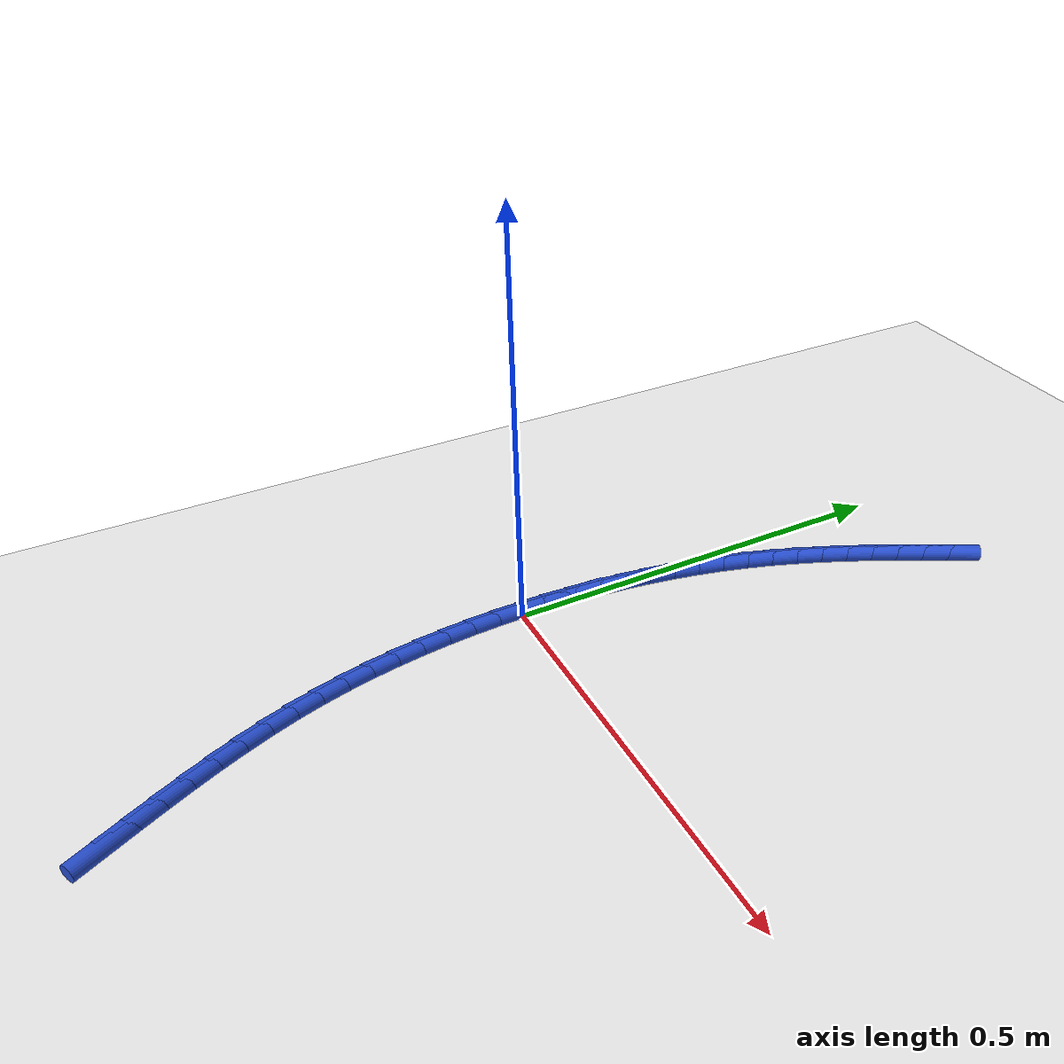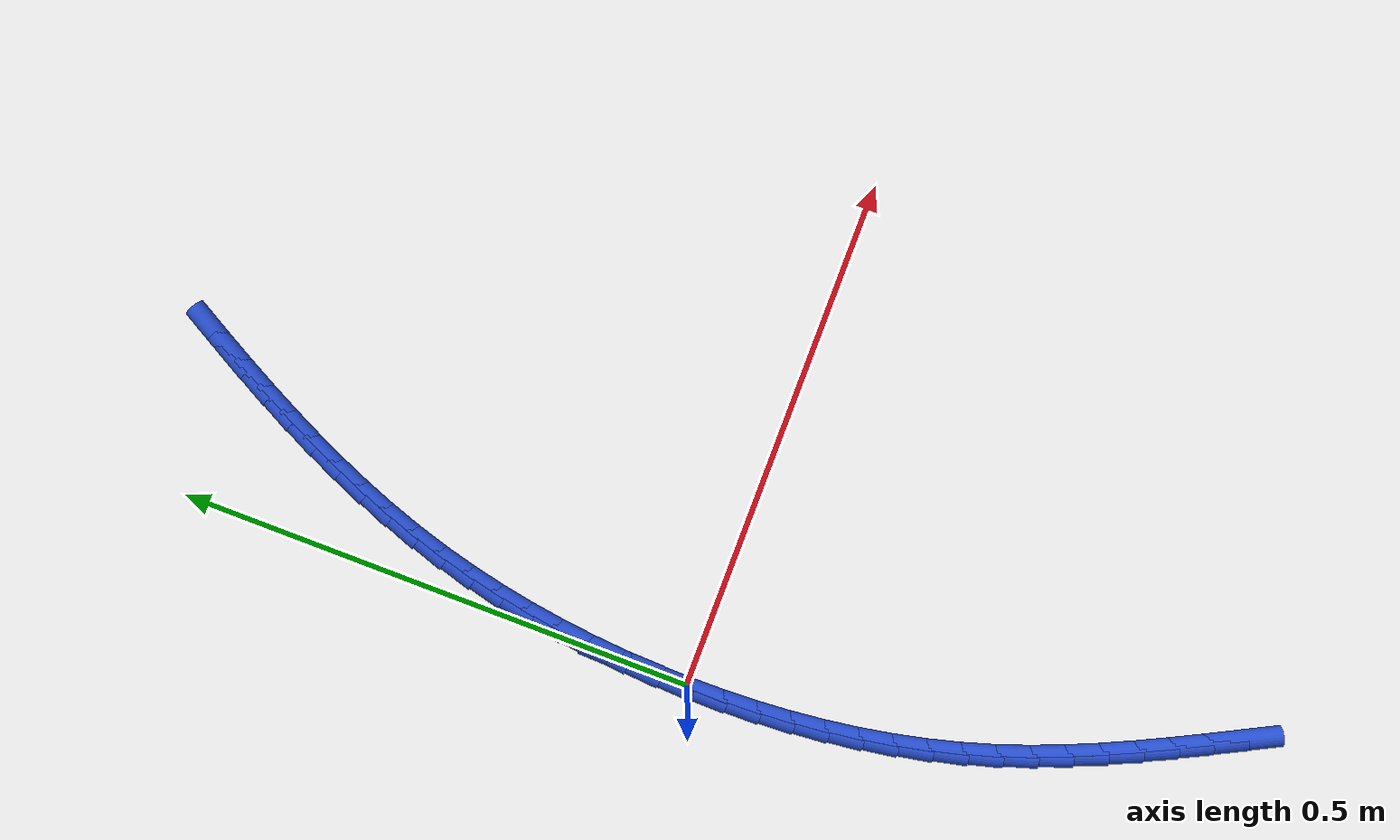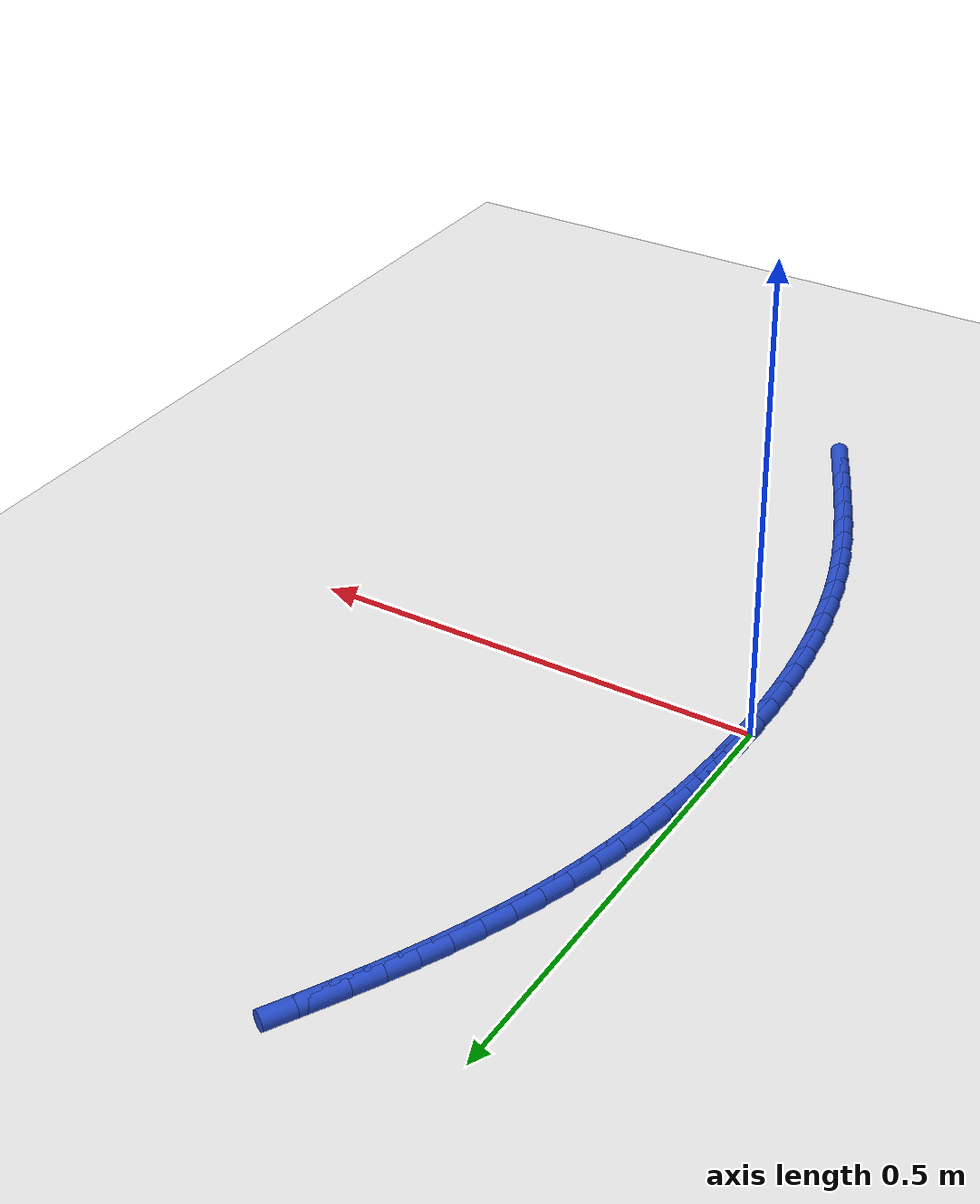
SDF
<sdf version="1.6">
 <world name="default">
  <model name="ground_plane">
   <static>1</static>
   <link name="link">
    <collision name="collision">
     <geometry><plane><normal>0 0 1</normal><size>100 100</size></plane></geometry>
     <surface><friction><ode><mu>100</mu><mu2>50</mu2></ode></friction></surface>
    </collision>
    <visual name="visual">
     <cast_shadows>0</cast_shadows>
     <geometry><plane><normal>0 0 1</normal><size>100 100</size></plane></geometry>
     <material>
      <script><uri>file://media/materials/scripts/gazebo.material</uri><name>Gazebo/WhiteGlow</name></script>
     </material>
    </visual>
   </link>
  </model>
  <model name="line">
   <link name="link_0">
    <pose>-1.1275702593849246e-17 6.938893903907228e-18 0.01 0 1.57 1.5528776744222816</pose>
    <collision name="collision">
     <geometry><cylinder><radius>0.01</radius><length>0.08</length></cylinder></geometry>
    </collision>
    <visual name="visual">
     <material>
      <script><name>Gazebo/Blue</name><uri>file://media/materials/scripts/gazebo.material</uri></script>
     </material>
     <geometry><cylinder><radius>0.01</radius><length>0.08</length></cylinder></geometry>
    </visual>
   </link>
   <link name="link_1">
    <pose>0.0005847356808313511 0.03262930076394987 0.01 0 1.57 1.5231234248671703</pose>
    <collision name="collision">
     <geometry><cylinder><radius>0.01</radius><length>0.08</length></cylinder></geometry>
    </collision>
    <visual name="visual">
     <material>
      <script><name>Gazebo/Blue</name><uri>file://media/materials/scripts/gazebo.material</uri></script>
     </material>
     <geometry><cylinder><radius>0.01</radius><length>0.08</length></cylinder></geometry>
    </visual>
   </link>
   <link name="link_2">
    <pose>0.0021392181864448552 0.06521185054207165 0.01 0 1.57 1.4924975641499387</pose>
    <collision name="collision">
     <geometry><cylinder><radius>0.01</radius><length>0.08</length></cylinder></geometry>
    </collision>
    <visual name="visual">
     <material>
      <script><name>Gazebo/Blue</name><uri>file://media/materials/scripts/gazebo.material</uri></script>
     </material>
     <geometry><cylinder><radius>0.01</radius><length>0.08</length></cylinder></geometry>
    </visual>
   </link>
   <link name="link_3">
    <pose>0.004687408967978583 0.09768977447747727 0.01 0 1.57 1.4608954747923455</pose>
    <collision name="collision">
     <geometry><cylinder><radius>0.01</radius><length>0.08</length></cylinder></geometry>
    </collision>
    <visual name="visual">
     <material>
      <script><name>Gazebo/Blue</name><uri>file://media/materials/scripts/gazebo.material</uri></script>
     </material>
     <geometry><cylinder><radius>0.01</radius><length>0.08</length></cylinder></geometry>
    </visual>
   </link>
   <link name="link_4">
    <pose>0.008253269476570608 0.1300051977132785 0.01 0 1.57 1.428212779567015</pose>
    <collision name="collision">
     <geometry><cylinder><radius>0.01</radius><length>0.08</length></cylinder></geometry>
    </collision>
    <visual name="visual">
     <material>
      <script><name>Gazebo/Blue</name><uri>file://media/materials/scripts/gazebo.material</uri></script>
     </material>
     <geometry><cylinder><radius>0.01</radius><length>0.08</length></cylinder></geometry>
    </visual>
   </link>
   <link name="link_5">
    <pose>0.012860761163359007 0.1621002453925873 0.01 0 1.57 1.3943459740241426</pose>
    <collision name="collision">
     <geometry><cylinder><radius>0.01</radius><length>0.08</length></cylinder></geometry>
    </collision>
    <visual name="visual">
     <material>
      <script><name>Gazebo/Blue</name><uri>file://media/materials/scripts/gazebo.material</uri></script>
     </material>
     <geometry><cylinder><radius>0.01</radius><length>0.08</length></cylinder></geometry>
    </visual>
   </link>
   <link name="link_6">
    <pose>0.01853384547948185 0.1939170426585154 0.01 0 1.57 1.359193421516529</pose>
    <collision name="collision">
     <geometry><cylinder><radius>0.01</radius><length>0.08</length></cylinder></geometry>
    </collision>
    <visual name="visual">
     <material>
      <script><name>Gazebo/Blue</name><uri>file://media/materials/scripts/gazebo.material</uri></script>
     </material>
     <geometry><cylinder><radius>0.01</radius><length>0.08</length></cylinder></geometry>
    </visual>
   </link>
   <link name="link_7">
    <pose>0.02529648387607722 0.22539771465417469 0.01 0 1.57 1.322656769166291</pose>
    <collision name="collision">
     <geometry><cylinder><radius>0.01</radius><length>0.08</length></cylinder></geometry>
    </collision>
    <visual name="visual">
     <material>
      <script><name>Gazebo/Blue</name><uri>file://media/materials/scripts/gazebo.material</uri></script>
     </material>
     <geometry><cylinder><radius>0.01</radius><length>0.08</length></cylinder></geometry>
    </visual>
   </link>
   <link name="link_8">
    <pose>0.03317263780428319 0.256484386522677 0.01 0 1.57 1.2846470649076709</pose>
    <collision name="collision">
     <geometry><cylinder><radius>0.01</radius><length>0.08</length></cylinder></geometry>
    </collision>
    <visual name="visual">
     <material>
      <script><name>Gazebo/Blue</name><uri>file://media/materials/scripts/gazebo.material</uri></script>
     </material>
     <geometry><cylinder><radius>0.01</radius><length>0.08</length></cylinder></geometry>
    </visual>
   </link>
   <link name="link_9">
    <pose>0.04218615847200757 0.2871192862710466 0.01 0 1.57 1.2463314492588073</pose>
    <collision name="collision">
     <geometry><cylinder><radius>0.01</radius><length>0.08</length></cylinder></geometry>
    </collision>
    <visual name="visual">
     <material>
      <script><name>Gazebo/Blue</name><uri>file://media/materials/scripts/gazebo.material</uri></script>
     </material>
     <geometry><cylinder><radius>0.01</radius><length>0.08</length></cylinder></geometry>
    </visual>
   </link>
   <link name="link_10">
    <pose>0.05232891794545917 0.3172744804698456 0.01 0 1.57 1.2107497144841182</pose>
    <collision name="collision">
     <geometry><cylinder><radius>0.01</radius><length>0.08</length></cylinder></geometry>
    </collision>
    <visual name="visual">
     <material>
      <script><name>Gazebo/Blue</name><uri>file://media/materials/scripts/gazebo.material</uri></script>
     </material>
     <geometry><cylinder><radius>0.01</radius><length>0.08</length></cylinder></geometry>
    </visual>
   </link>
   <link name="link_11">
    <pose>0.06351666048580978 0.3469930677507514 0.01 0 1.57 1.1784972051245906</pose>
    <collision name="collision">
     <geometry><cylinder><radius>0.01</radius><length>0.08</length></cylinder></geometry>
    </collision>
    <visual name="visual">
     <material>
      <script><name>Gazebo/Blue</name><uri>file://media/materials/scripts/gazebo.material</uri></script>
     </material>
     <geometry><cylinder><radius>0.01</radius><length>0.08</length></cylinder></geometry>
    </visual>
   </link>
   <link name="link_12">
    <pose>0.07565404607466868 0.37632848907992666 0.01 0 1.57 1.1496890651347498</pose>
    <collision name="collision">
     <geometry><cylinder><radius>0.01</radius><length>0.08</length></cylinder></geometry>
    </collision>
    <visual name="visual">
     <material>
      <script><name>Gazebo/Blue</name><uri>file://media/materials/scripts/gazebo.material</uri></script>
     </material>
     <geometry><cylinder><radius>0.01</radius><length>0.08</length></cylinder></geometry>
    </visual>
   </link>
   <link name="link_13">
    <pose>0.08864573469364508 0.405334185423534 0.01 0 1.57 1.1243934355770457</pose>
    <collision name="collision">
     <geometry><cylinder><radius>0.01</radius><length>0.08</length></cylinder></geometry>
    </collision>
    <visual name="visual">
     <material>
      <script><name>Gazebo/Blue</name><uri>file://media/materials/scripts/gazebo.material</uri></script>
     </material>
     <geometry><cylinder><radius>0.01</radius><length>0.08</length></cylinder></geometry>
    </visual>
   </link>
   <link name="link_14">
    <pose>0.10239638632434825 0.4340635977477362 0.01 0 1.57 1.1026409555502208</pose>
    <collision name="collision">
     <geometry><cylinder><radius>0.01</radius><length>0.08</length></cylinder></geometry>
    </collision>
    <visual name="visual">
     <material>
      <script><name>Gazebo/Blue</name><uri>file://media/materials/scripts/gazebo.material</uri></script>
     </material>
     <geometry><cylinder><radius>0.01</radius><length>0.08</length></cylinder></geometry>
    </visual>
   </link>
   <link name="link_15">
    <pose>0.11681066094838743 0.46257016701869563 0.01 0 1.57 1.0844339729226653</pose>
    <collision name="collision">
     <geometry><cylinder><radius>0.01</radius><length>0.08</length></cylinder></geometry>
    </collision>
    <visual name="visual">
     <material>
      <script><name>Gazebo/Blue</name><uri>file://media/materials/scripts/gazebo.material</uri></script>
     </material>
     <geometry><cylinder><radius>0.01</radius><length>0.08</length></cylinder></geometry>
    </visual>
   </link>
   <link name="link_16">
    <pose>0.13179321854737192 0.4909073342025754 0.01 0 1.57 1.0697548475673473</pose>
    <collision name="collision">
     <geometry><cylinder><radius>0.01</radius><length>0.08</length></cylinder></geometry>
    </collision>
    <visual name="visual">
     <material>
      <script><name>Gazebo/Blue</name><uri>file://media/materials/scripts/gazebo.material</uri></script>
     </material>
     <geometry><cylinder><radius>0.01</radius><length>0.08</length></cylinder></geometry>
    </visual>
   </link>
   <link name="link_17">
    <pose>0.14724871910291085 0.5191285402655377 0.01 0 1.57 1.0585729898277936</pose>
    <collision name="collision">
     <geometry><cylinder><radius>0.01</radius><length>0.08</length></cylinder></geometry>
    </collision>
    <visual name="visual">
     <material>
      <script><name>Gazebo/Blue</name><uri>file://media/materials/scripts/gazebo.material</uri></script>
     </material>
     <geometry><cylinder><radius>0.01</radius><length>0.08</length></cylinder></geometry>
    </visual>
   </link>
   <link name="link_204">
    <pose>0.13424867586608893 -0.49314504361906636 0.01 0 1.57 -1.0973495227596228</pose>
    <collision name="collision">
     <geometry><cylinder><radius>0.01</radius><length>0.08</length></cylinder></geometry>
    </collision>
    <visual name="visual">
     <material>
      <script><name>Gazebo/Blue</name><uri>file://media/materials/scripts/gazebo.material</uri></script>
     </material>
     <geometry><cylinder><radius>0.01</radius><length>0.08</length></cylinder></geometry>
    </visual>
   </link>
   <link name="link_205">
    <pose>0.11945685462642087 -0.4642722324491545 0.01 0 1.57 -1.106033818223249</pose>
    <collision name="collision">
     <geometry><cylinder><radius>0.01</radius><length>0.08</length></cylinder></geometry>
    </collision>
    <visual name="visual">
     <material>
      <script><name>Gazebo/Blue</name><uri>file://media/materials/scripts/gazebo.material</uri></script>
     </material>
     <geometry><cylinder><radius>0.01</radius><length>0.08</length></cylinder></geometry>
    </visual>
   </link>
   <link name="link_206">
    <pose>0.10493703220318351 -0.4353133482750056 0.01 0 1.57 -1.1201946108132743</pose>
    <collision name="collision">
     <geometry><cylinder><radius>0.01</radius><length>0.08</length></cylinder></geometry>
    </collision>
    <visual name="visual">
     <material>
      <script><name>Gazebo/Blue</name><uri>file://media/materials/scripts/gazebo.material</uri></script>
     </material>
     <geometry><cylinder><radius>0.01</radius><length>0.08</length></cylinder></geometry>
    </visual>
   </link>
   <link name="link_207">
    <pose>0.09085626119955191 -0.4062086633161604 0.01 0 1.57 -1.139883763650668</pose>
    <collision name="collision">
     <geometry><cylinder><radius>0.01</radius><length>0.08</length></cylinder></geometry>
    </collision>
    <visual name="visual">
     <material>
      <script><name>Gazebo/Blue</name><uri>file://media/materials/scripts/gazebo.material</uri></script>
     </material>
     <geometry><cylinder><radius>0.01</radius><length>0.08</length></cylinder></geometry>
    </visual>
   </link>
   <link name="link_208">
    <pose>0.07738159421870196 -0.3768984497921617 0.01 0 1.57 -1.1651532627304582</pose>
    <collision name="collision">
     <geometry><cylinder><radius>0.01</radius><length>0.08</length></cylinder></geometry>
    </collision>
    <visual name="visual">
     <material>
      <script><name>Gazebo/Blue</name><uri>file://media/materials/scripts/gazebo.material</uri></script>
     </material>
     <geometry><cylinder><radius>0.01</radius><length>0.08</length></cylinder></geometry>
    </visual>
   </link>
   <link name="link_209">
    <pose>0.06468008386380865 -0.34732297992255035 0.01 0 1.57 -1.1960370506722553</pose>
    <collision name="collision">
     <geometry><cylinder><radius>0.01</radius><length>0.08</length></cylinder></geometry>
    </collision>
    <visual name="visual">
     <material>
      <script><name>Gazebo/Blue</name><uri>file://media/materials/scripts/gazebo.material</uri></script>
     </material>
     <geometry><cylinder><radius>0.01</radius><length>0.08</length></cylinder></geometry>
    </visual>
   </link>
   <link name="link_210">
    <pose>0.052918782738047274 -0.3174225259268677 0.01 0 1.57 -1.232527132893923</pose>
    <collision name="collision">
     <geometry><cylinder><radius>0.01</radius><length>0.08</length></cylinder></geometry>
    </collision>
    <visual name="visual">
     <material>
      <script><name>Gazebo/Blue</name><uri>file://media/materials/scripts/gazebo.material</uri></script>
     </material>
     <geometry><cylinder><radius>0.01</radius><length>0.08</length></cylinder></geometry>
    </visual>
   </link>
   <link name="link_211">
    <pose>0.04226474344459309 -0.2871373600246553 0.01 0 1.57 -1.273877243915125</pose>
    <collision name="collision">
     <geometry><cylinder><radius>0.01</radius><length>0.08</length></cylinder></geometry>
    </collision>
    <visual name="visual">
     <material>
      <script><name>Gazebo/Blue</name><uri>file://media/materials/scripts/gazebo.material</uri></script>
     </material>
     <geometry><cylinder><radius>0.01</radius><length>0.08</length></cylinder></geometry>
    </visual>
   </link>
   <link name="link_212">
    <pose>0.032865726862589 -0.25641797804374933 0.01 0 1.57 -1.315400186247062</pose>
    <collision name="collision">
     <geometry><cylinder><radius>0.01</radius><length>0.08</length></cylinder></geometry>
    </collision>
    <visual name="visual">
     <material>
      <script><name>Gazebo/Blue</name><uri>file://media/materials/scripts/gazebo.material</uri></script>
     </material>
     <geometry><cylinder><radius>0.01</radius><length>0.08</length></cylinder></geometry>
    </visual>
   </link>
   <link name="link_213">
    <pose>0.024736996617057517 -0.22528509245121264 0.01 0 1.57 -1.3551644557044602</pose>
    <collision name="collision">
     <geometry><cylinder><radius>0.01</radius><length>0.08</length></cylinder></geometry>
    </collision>
    <visual name="visual">
     <material>
      <script><name>Gazebo/Blue</name><uri>file://media/materials/scripts/gazebo.material</uri></script>
     </material>
     <geometry><cylinder><radius>0.01</radius><length>0.08</length></cylinder></geometry>
    </visual>
   </link>
   <link name="link_214">
    <pose>0.017838157977151547 -0.1937889117419272 0.01 0 1.57 -1.3931941835379786</pose>
    <collision name="collision">
     <geometry><cylinder><radius>0.01</radius><length>0.08</length></cylinder></geometry>
    </collision>
    <visual name="visual">
     <material>
      <script><name>Gazebo/Blue</name><uri>file://media/materials/scripts/gazebo.material</uri></script>
     </material>
     <geometry><cylinder><radius>0.01</radius><length>0.08</length></cylinder></geometry>
    </visual>
   </link>
   <link name="link_215">
    <pose>0.012128624338302325 -0.16197974609384874 0.01 0 1.57 -1.4295372331324765</pose>
    <collision name="collision">
     <geometry><cylinder><radius>0.01</radius><length>0.08</length></cylinder></geometry>
    </collision>
    <visual name="visual">
     <material>
      <script><name>Gazebo/Blue</name><uri>file://media/materials/scripts/gazebo.material</uri></script>
     </material>
     <geometry><cylinder><radius>0.01</radius><length>0.08</length></cylinder></geometry>
    </visual>
   </link>
   <link name="link_216">
    <pose>0.007567809095940963 -0.1299079056849318 0.01 0 1.57 -1.4642547647175193</pose>
    <collision name="collision">
     <geometry><cylinder><radius>0.01</radius><length>0.08</length></cylinder></geometry>
    </collision>
    <visual name="visual">
     <material>
      <script><name>Gazebo/Blue</name><uri>file://media/materials/scripts/gazebo.material</uri></script>
     </material>
     <geometry><cylinder><radius>0.01</radius><length>0.08</length></cylinder></geometry>
    </visual>
   </link>
   <link name="link_217">
    <pose>0.004115125645498902 -0.09762370069313347 0.01 0 1.57 -1.4974178872634123</pose>
    <collision name="collision">
     <geometry><cylinder><radius>0.01</radius><length>0.08</length></cylinder></geometry>
    </collision>
    <visual name="visual">
     <material>
      <script><name>Gazebo/Blue</name><uri>file://media/materials/scripts/gazebo.material</uri></script>
     </material>
     <geometry><cylinder><radius>0.01</radius><length>0.08</length></cylinder></geometry>
    </visual>
   </link>
   <link name="link_218">
    <pose>0.0017299873824072423 -0.06517744129640855 0.01 0 1.57 -1.5291048065392794</pose>
    <collision name="collision">
     <geometry><cylinder><radius>0.01</radius><length>0.08</length></cylinder></geometry>
    </collision>
    <visual name="visual">
     <material>
      <script><name>Gazebo/Blue</name><uri>file://media/materials/scripts/gazebo.material</uri></script>
     </material>
     <geometry><cylinder><radius>0.01</radius><length>0.08</length></cylinder></geometry>
    </visual>
   </link>
   <link name="link_219">
    <pose>0.00037180770209719856 -0.0326194376727125 0.01 0 1.57 -1.5593984723916172</pose>
    <collision name="collision">
     <geometry><cylinder><radius>0.01</radius><length>0.08</length></cylinder></geometry>
    </collision>
    <visual name="visual">
     <material>
      <script><name>Gazebo/Blue</name><uri>file://media/materials/scripts/gazebo.material</uri></script>
     </material>
     <geometry><cylinder><radius>0.01</radius><length>0.08</length></cylinder></geometry>
    </visual>
   </link>
   <link name="link_220">
    <pose>-2.6020852139652106e-18 -6.245004513516506e-17 0.01 0 1.57 1.5532079539215862</pose>
    <collision name="collision">
     <geometry><cylinder><radius>0.01</radius><length>0.08</length></cylinder></geometry>
    </collision>
    <visual name="visual">
     <material>
      <script><name>Gazebo/Blue</name><uri>file://media/materials/scripts/gazebo.material</uri></script>
     </material>
     <geometry><cylinder><radius>0.01</radius><length>0.08</length></cylinder></geometry>
    </visual>
   </link>
   <link name="link_221">
    <pose>0.0005739776715468518 0.03263056154377093 0.01 0 1.57 1.5254419329281106</pose>
    <collision name="collision">
     <geometry><cylinder><radius>0.01</radius><length>0.08</length></cylinder></geometry>
    </collision>
    <visual name="visual">
     <material>
      <script><name>Gazebo/Blue</name><uri>file://media/materials/scripts/gazebo.material</uri></script>
     </material>
     <geometry><cylinder><radius>0.01</radius><length>0.08</length></cylinder></geometry>
    </visual>
   </link>
   <link name="link_222">
    <pose>0.002053154112169035 0.0652219367806481 0.01 0 1.57 1.539327216565965</pose>
    <collision name="collision">
     <geometry><cylinder><radius>0.01</radius><length>0.08</length></cylinder></geometry>
    </collision>
    <visual name="visual">
     <material>
      <script><name>Gazebo/Blue</name><uri>file://media/materials/scripts/gazebo.material</uri></script>
     </material>
     <geometry><cylinder><radius>0.01</radius><length>0.08</length></cylinder></geometry>
    </visual>
   </link>
  </model>
 </world>
</sdf>
